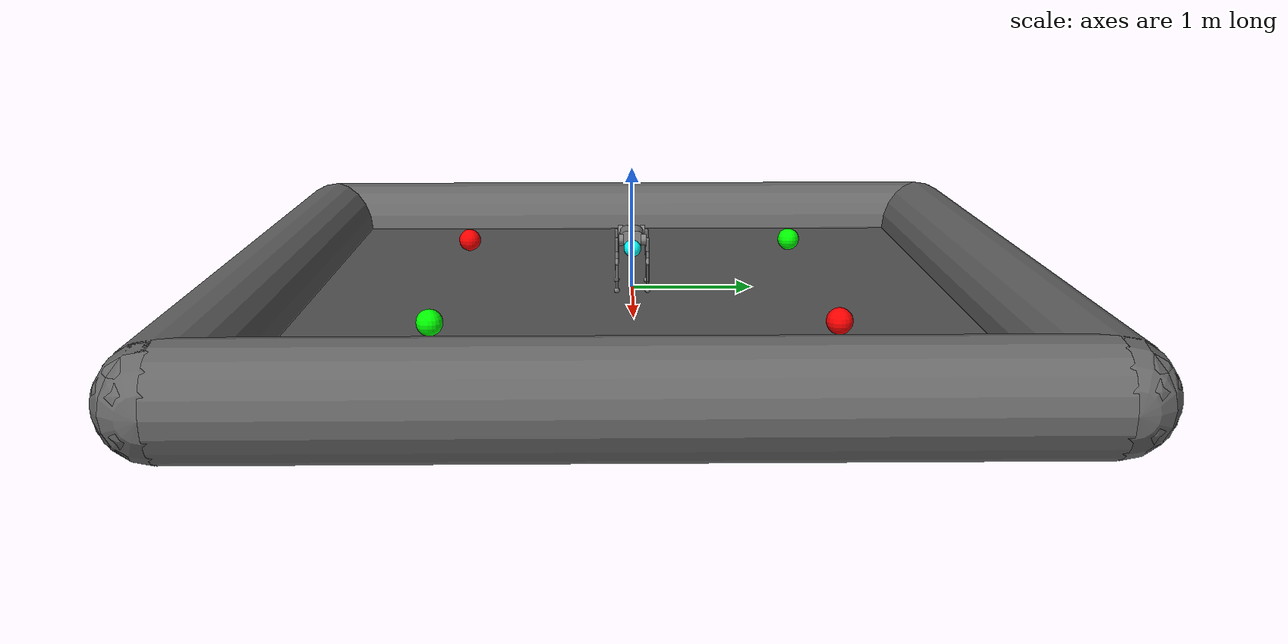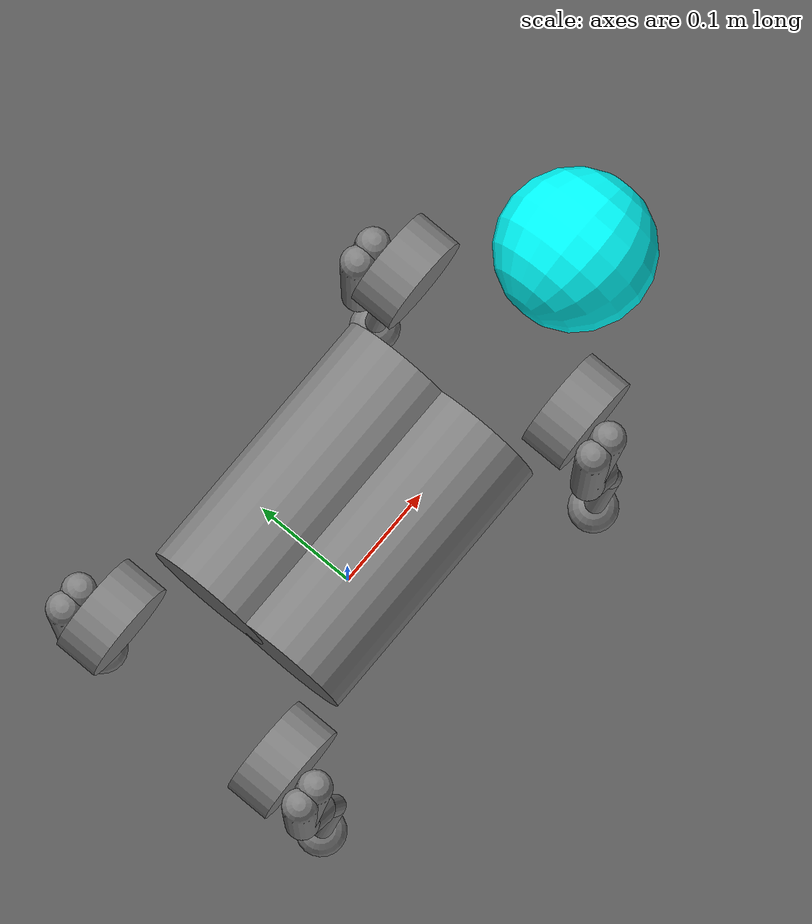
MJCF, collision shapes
<mujoco model="go1 scene">
  <include file="go1_mjx_fullcollisions.xml"/>

  <statistic center="0 0 0.1" extent="0.8" meansize="0.04"/>

  <default>
    <geom solimp=".9 .9 .01"/>
    <default class="sphere">
      <geom type="sphere" material="sphere" size="0.05" friction="1 .01 .01"/>
    </default>
    <default class="border">
      <geom type="capsule" size="0.4" rgba=".4 .4 .4 1" contype="1" conaffinity="1"/>
    </default>
    <default class="borderpost">
      <geom type="box" size="0.41 0.41 0.41" rgba=".55 .55 .55 1" contype="1" conaffinity="1"/>
    </default>
  </default>

  <visual>
    <headlight diffuse=".8 .8 .8" ambient=".2 .2 .2" specular="1 1 1"/>
    <rgba force="1 0 0 1"/>
    <global azimuth="120" elevation="-20"/>
    <map force="0.01"/>
    <scale forcewidth="0.3" contactwidth="0.5" contactheight="0.2"/>
    <quality shadowsize="8192"/>
  </visual>

  <asset>
    <texture type="skybox" builtin="gradient" width="512" height="512" rgb1=".4 .6 .8" rgb2="0 0 0"/>
    <texture name="texgeom" type="cube" builtin="flat" mark="cross" width="128" height="128" rgb1="0.6 0.6 0.6" rgb2="0.6 0.6 0.6" markrgb="1 1 1"/>
    <texture name="texplane" type="2d" builtin="checker" rgb1=".4 .4 .4" rgb2=".6 .6 .6" width="512" height="512"/>
    <material name="MatPlane" reflectance="0.3" texture="texplane" texrepeat="1 1" texuniform="true" rgba=".7 .7 .7 1"/>
    <material name="capsule" texture="texgeom" texuniform="true" rgba=".4 .9 .6 1"/>
    <material name="ellipsoid" texture="texgeom" texuniform="true" rgba=".4 .6 .9 1"/>
    <material name="box" texture="texgeom" texuniform="true" rgba=".4 .9 .9 1"/>
    <material name="cylinder" texture="texgeom" texuniform="true" rgba=".8 .6 .8 1"/>
    <material name="sphere" texture="texgeom" texuniform="true" rgba=".9 .1 .1 1"/>
    <material name="red_material" rgba="1 0 0 1"/>
    <material name="green_material" rgba="0 1 0 1"/>
  </asset>

  <worldbody>
    <light directional="true" diffuse=".8 .8 .8" pos="0 0 10" dir="0 0 -10"/>
    <geom name="floor" type="plane" size="3 3 .5" material="MatPlane" friction="0.6" condim="3" contype="1" conaffinity="0"/>
    <geom class="border" fromto="-3 3 0 3 3 0" name="wall_0"/>
    <geom class="border" fromto="-3 -3 0 3 -3 0" name="wall_1"/>
    <geom class="border" fromto="3 3 0 3 -3 0" name="wall_2"/>
    <geom class="border" fromto="-3 3 0 -3 -3 0" name="wall_3"/>

    <body name="red_object_1" pos="1.5 1.5 0.1">
      <geom name="red_sphere_1" type="sphere" size="0.1" material="red_material"/>
    </body>
    <body name="red_object_2" pos="-1.5 -1.5 0.1">
      <geom name="red_sphere_2" type="sphere" size="0.1" material="red_material"/>
    </body>

    <body name="green_object_1" pos="1.5 -1.5 0.1">
      <geom name="green_sphere_1" type="sphere" size="0.1" material="green_material"/>
    </body>
    <body name="green_object_2" pos="-1.5 1.5 0.1">
      <geom name="green_sphere_2" type="sphere" size="0.1" material="green_material"/>
    </body>

  </worldbody>

  <keyframe>
    <key name="home" qpos="
    1.2 1.5 0.3
    1 0 0 0
    0.1 0.9 -1.8
    -0.1 0.9 -1.8
    0.1 0.9 -1.8
    -0.1 0.9 -1.8
    "
      ctrl="0.1 0.9 -1.8 -0.1 0.9 -1.8 0.1 0.9 -1.8 -0.1 0.9 -1.8"/>
  </keyframe>

</mujoco>

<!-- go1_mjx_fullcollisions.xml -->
<mujoco model="go1">
  <compiler angle="radian" meshdir="assets/go1" autolimits="true"/>

  <option iterations="1" ls_iterations="5" timestep="0.004" integrator="Euler">
    <flag eulerdamp="disable"/>
  </option>

  <custom>
    <numeric data="30" name="max_contact_points"/>
    <numeric data="12" name="max_geom_pairs"/>
  </custom>

  <default>
    <default class="go1">
      <geom condim="1"/>
      <joint axis="0 1 0" armature="0.005" damping="0.5"/>
      <position forcerange="-23.7 23.7" inheritrange="1" kp="35"/>
      <default class="abduction">
        <joint axis="1 0 0" range="-0.863 0.863" frictionloss="0.3"/>
      </default>
      <default class="hip">
        <joint range="-0.686 4.501" frictionloss="0.3"/>
      </default>
      <default class="knee">
        <joint range="-2.818 -0.888" frictionloss="1.0"/>
        <position forcerange="-35.55 35.55"/>
      </default>
      <default class="visual">
        <geom type="mesh" contype="0" conaffinity="0" group="2" material="dark"/>
      </default>
      <default class="collision">
        <geom group="3" type="capsule"/>
        <default class="hip_left1">
          <geom size="0.046 0.02" pos="0 0.045 0" quat="1 1 0 0" type="cylinder"/>
        </default>
        <default class="hip_left2">
          <geom size="0.031 0.02" pos="0 0.065 0" quat="1 1 0 0" type="cylinder"/>
        </default>
        <default class="hip_left3">
          <geom size="0.046 0.02" quat="1 1 0 0" type="cylinder"/>
        </default>
        <default class="hip_right1">
          <geom size="0.046 0.02" pos="0 -0.045 0" quat="1 1 0 0" type="cylinder"/>
        </default>
        <default class="hip_right2">
          <geom size="0.031 0.02" pos="0 -0.065 0" quat="1 1 0 0" type="cylinder"/>
        </default>
        <default class="hip_right3">
          <geom size="0.046 0.02" quat="1 1 0 0" type="cylinder"/>
        </default>
        <default class="thigh1">
          <geom size="0.015" fromto="-0.02 0 0 -0.02 0 -0.16"/>
        </default>
        <default class="thigh2">
          <geom size="0.015" fromto="0 0 0 -0.02 0 -0.1"/>
        </default>
        <default class="thigh3">
          <geom size="0.015" fromto="-0.02 0 -0.16 0 0 -0.2"/>
        </default>
        <default class="calf1">
          <geom size="0.01" fromto="0 0 0 0.02 0 -0.13"/>
        </default>
        <default class="calf2">
          <geom size="0.01" fromto="0.02 0 -0.13 0 0 -0.2"/>
        </default>
        <default class="foot">
          <geom type="sphere" size="0.023" pos="0 0 -0.213" solimp="0.9 .95 0.023" condim="3"/>
        </default>
        <default class="head">
          <geom type="sphere" size="0.07" pos="0.3 0 0" solimp="0.9 .95 0.023" condim="3"/>
        </default>
      </default>
    </default>
  </default>

  <asset>
    <material name="dark" rgba="0.2 0.2 0.2 1"/>
    <mesh class="go1" file="trunk.stl"/>
    <mesh class="go1" file="hip.stl"/>
    <mesh class="go1" file="thigh_mirror.stl"/>
    <mesh class="go1" file="calf.stl"/>
    <mesh class="go1" file="thigh.stl"/>
  </asset>

  <worldbody>
    <light directional="true" diffuse=".8 .8 .8" pos="0 0 10" dir="0 0 -10"/>
    <body name="trunk" pos="0 0 0.445" childclass="go1">
      <inertial pos="0.0223 0.002 -0.0005" quat="-0.00342088 0.705204 0.000106698 0.708996" mass="5.204"
        diaginertia="0.0716565 0.0630105 0.0168101"/>
      <freejoint/>
      <geom class="visual" mesh="trunk"/>
      <geom class="collision" quat="1 0 1 0" pos="0 -0.04 0" size="0.058 0.125" type="cylinder"/>
      <geom class="collision" quat="1 0 1 0" pos="0 +0.04 0" size="0.058 0.125" type="cylinder"/>
      <geom class="collision" quat="1 0 1 0" pos="0.3 0 -0.05" size="0.07" type="sphere" name="head" rgba="0 1 1 0.3"/>
      <site name="head" pos="0.3 0 -0.05" rgba="0 1 1 0.3" size="0.07" group="5"/>
      <site name="imu" pos="-0.01592 -0.06659 -0.00617" group="5"/>
      <body name="FR_hip" pos="0.1881 -0.04675 0">
        <inertial pos="-0.0049166 0.00762615 -8.865e-05" quat="0.507341 0.514169 0.495027 0.482891" mass="0.68"
          diaginertia="0.000734064 0.000468438 0.000398719"/>
        <joint class="abduction" name="FR_hip_joint"/>
        <geom class="visual" mesh="hip" quat="1 0 0 0"/>
        <geom name="fr_hip" class="hip_right1"/>
        <body name="FR_thigh" pos="0 -0.08 0">
          <inertial pos="-0.00304722 0.019315 -0.0305004" quat="0.65243 -0.0272313 0.0775126 0.753383" mass="1.009"
            diaginertia="0.00478717 0.00460903 0.000709268"/>
          <joint class="hip" name="FR_thigh_joint"/>
          <geom class="visual" mesh="thigh_mirror"/>
          <geom name="fr_thigh1" class="thigh1"/>
          <geom name="fr_thigh2" class="thigh2"/>
          <geom name="fr_thigh3" class="thigh3"/>
          <body name="FR_calf" pos="0 0 -0.213">
            <inertial pos="0.00429862 0.000976676 -0.146197" quat="0.691246 0.00357467 0.00511118 0.722592"
              mass="0.195862" diaginertia="0.00149767 0.00148468 3.58427e-05"/>
            <joint class="knee" name="FR_calf_joint"/>
            <geom class="visual" mesh="calf"/>
            <geom name="fr_calf1" class="calf1"/>
            <geom name="fr_calf2" class="calf2"/>
            <geom name="FR" class="foot"/>
            <site name="FR" pos="0 0 -0.213" type="sphere" size="0.023" group="5"/>
          </body>
        </body>
      </body>
      <body name="FL_hip" pos="0.1881 0.04675 0">
        <inertial pos="-0.0049166 -0.00762615 -8.865e-05" quat="0.482891 0.495027 0.514169 0.507341" mass="0.68"
          diaginertia="0.000734064 0.000468438 0.000398719"/>
        <joint class="abduction" name="FL_hip_joint"/>
        <geom class="visual" mesh="hip"/>
        <geom name="fl_hip" class="hip_left1"/>
        <body name="FL_thigh" pos="0 0.08 0">
          <inertial pos="-0.00304722 -0.019315 -0.0305004" quat="0.753383 0.0775126 -0.0272313 0.65243" mass="1.009"
            diaginertia="0.00478717 0.00460903 0.000709268"/>
          <joint class="hip" name="FL_thigh_joint"/>
          <geom class="visual" mesh="thigh"/>
          <geom name="fl_thigh1" class="thigh1"/>
          <geom name="fl_thigh2" class="thigh2"/>
          <geom name="fl_thigh3" class="thigh3"/>
          <body name="FL_calf" pos="0 0 -0.213">
            <inertial pos="0.00429862 0.000976676 -0.146197" quat="0.691246 0.00357467 0.00511118 0.722592"
              mass="0.195862" diaginertia="0.00149767 0.00148468 3.58427e-05"/>
            <joint class="knee" name="FL_calf_joint"/>
            <geom class="visual" mesh="calf"/>
            <geom name="fl_calf1" class="calf1"/>
            <geom name="fl_calf2" class="calf2"/>
            <geom name="FL" class="foot"/>
            <site name="FL" pos="0 0 -0.213" type="sphere" size="0.023" group="5"/>
          </body>
        </body>
      </body>
      <body name="RR_hip" pos="-0.1881 -0.04675 0">
        <inertial pos="0.0049166 0.00762615 -8.865e-05" quat="0.495027 0.482891 0.507341 0.514169" mass="0.68"
          diaginertia="0.000734064 0.000468438 0.000398719"/>
        <joint class="abduction" name="RR_hip_joint"/>
        <geom class="visual" quat="0 0 0 -1" mesh="hip"/>
        <geom name="rr_hip" class="hip_right1"/>
        <body name="RR_thigh" pos="0 -0.08 0">
          <inertial pos="-0.00304722 0.019315 -0.0305004" quat="0.65243 -0.0272313 0.0775126 0.753383" mass="1.009"
            diaginertia="0.00478717 0.00460903 0.000709268"/>
          <joint class="hip" name="RR_thigh_joint"/>
          <geom class="visual" mesh="thigh_mirror"/>
          <geom name="rr_thigh1" class="thigh1"/>
          <geom name="rr_thigh2" class="thigh2"/>
          <geom name="rr_thigh3" class="thigh3"/>
          <body name="RR_calf" pos="0 0 -0.213">
            <inertial pos="0.00429862 0.000976676 -0.146197" quat="0.691246 0.00357467 0.00511118 0.722592"
              mass="0.195862" diaginertia="0.00149767 0.00148468 3.58427e-05"/>
            <joint class="knee" name="RR_calf_joint"/>
            <geom class="visual" mesh="calf"/>
            <geom name="rr_calf1" class="calf1"/>
            <geom name="rr_calf2" class="calf2"/>
            <geom name="RR" class="foot"/>
            <site name="RR" pos="0 0 -0.213" type="sphere" size="0.023" group="5"/>
          </body>
        </body>
      </body>
      <body name="RL_hip" pos="-0.1881 0.04675 0">
        <inertial pos="0.0049166 -0.00762615 -8.865e-05" quat="0.514169 0.507341 0.482891 0.495027" mass="0.68"
          diaginertia="0.000734064 0.000468438 0.000398719"/>
        <joint class="abduction" name="RL_hip_joint"/>
        <geom class="visual" quat="0 0 1 0" mesh="hip"/>
        <geom name="rl_hip" class="hip_left1"/>
        <body name="RL_thigh" pos="0 0.08 0">
          <inertial pos="-0.00304722 -0.019315 -0.0305004" quat="0.753383 0.0775126 -0.0272313 0.65243" mass="1.009"
            diaginertia="0.00478717 0.00460903 0.000709268"/>
          <joint class="hip" name="RL_thigh_joint"/>
          <geom class="visual" mesh="thigh"/>
          <geom name="rl_thigh1" class="thigh1"/>
          <geom name="rl_thigh2" class="thigh2"/>
          <geom name="rl_thigh3" class="thigh3"/>
          <body name="RL_calf" pos="0 0 -0.213">
            <inertial pos="0.00429862 0.000976676 -0.146197" quat="0.691246 0.00357467 0.00511118 0.722592"
              mass="0.195862" diaginertia="0.00149767 0.00148468 3.58427e-05"/>
            <joint class="knee" name="RL_calf_joint"/>
            <geom class="visual" mesh="calf"/>
            <geom name="rl_calf1" class="calf1"/>
            <geom name="rl_calf2" class="calf2"/>
            <geom name="RL" class="foot"/>
            <site name="RL" pos="0 0 -0.213" type="sphere" size="0.023" group="5"/>
          </body>
        </body>
      </body>
    </body>
  </worldbody>

  <actuator>
    <position class="abduction" name="FR_hip" joint="FR_hip_joint"/>
    <position class="hip" name="FR_thigh" joint="FR_thigh_joint"/>
    <position class="knee" name="FR_calf" joint="FR_calf_joint"/>
    <position class="abduction" name="FL_hip" joint="FL_hip_joint"/>
    <position class="hip" name="FL_thigh" joint="FL_thigh_joint"/>
    <position class="knee" name="FL_calf" joint="FL_calf_joint"/>
    <position class="abduction" name="RR_hip" joint="RR_hip_joint"/>
    <position class="hip" name="RR_thigh" joint="RR_thigh_joint"/>
    <position class="knee" name="RR_calf" joint="RR_calf_joint"/>
    <position class="abduction" name="RL_hip" joint="RL_hip_joint"/>
    <position class="hip" name="RL_thigh" joint="RL_thigh_joint"/>
    <position class="knee" name="RL_calf" joint="RL_calf_joint"/>
  </actuator>

  <sensor>
    <gyro site="imu" name="gyro"/>
    <velocimeter site="imu" name="local_linvel"/>
    <accelerometer site="imu" name="accelerometer"/>
    <framepos objtype="site" objname="imu" name="position"/>
    <framezaxis objtype="site" objname="imu" name="upvector"/>
    <framexaxis objtype="site" objname="imu" name="forwardvector"/>
    <framelinvel objtype="site" objname="imu" name="global_linvel"/>
    <frameangvel objtype="site" objname="imu" name="global_angvel"/>
    <framequat objtype="site" objname="imu" name="orientation"/>
    <framelinvel objtype="site" objname="FR" name="FR_global_linvel"/>
    <framelinvel objtype="site" objname="FL" name="FL_global_linvel"/>
    <framelinvel objtype="site" objname="RR" name="RR_global_linvel"/>
    <framelinvel objtype="site" objname="RL" name="RL_global_linvel"/>
    <framepos objtype="site" objname="FR" name="FR_pos" reftype="site" refname="imu"/>
    <framepos objtype="site" objname="FL" name="FL_pos" reftype="site" refname="imu"/>
    <framepos objtype="site" objname="RR" name="RR_pos" reftype="site" refname="imu"/>
    <framepos objtype="site" objname="RL" name="RL_pos" reftype="site" refname="imu"/>
    <framepos objtype="site" objname="head" name="head_pos"/>
  </sensor>
</mujoco>
